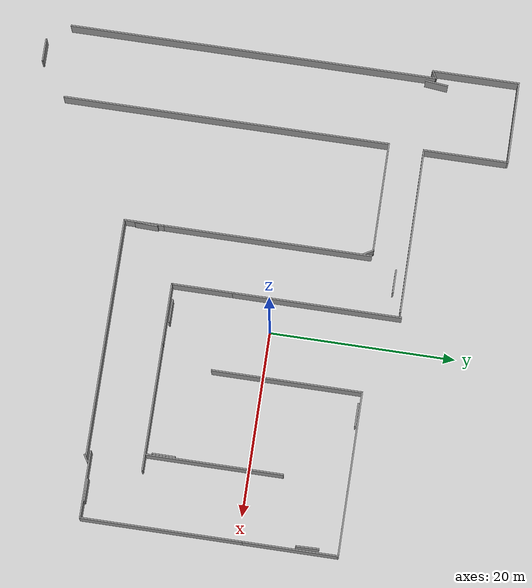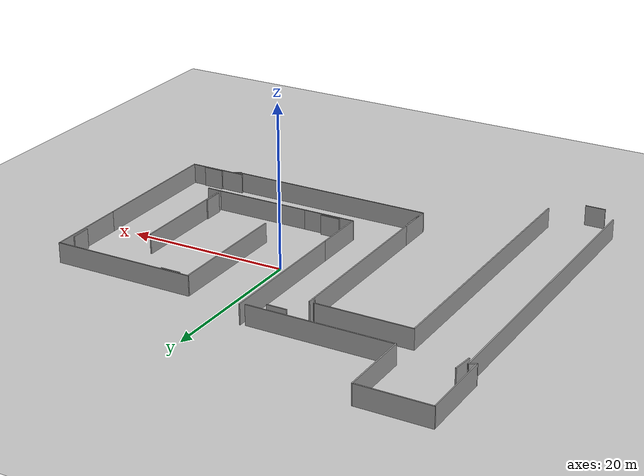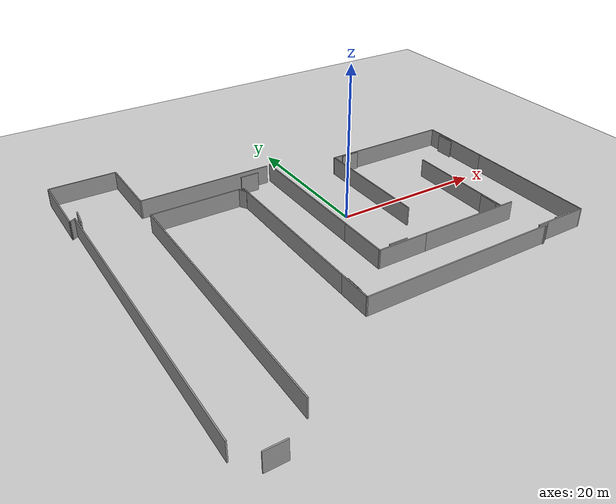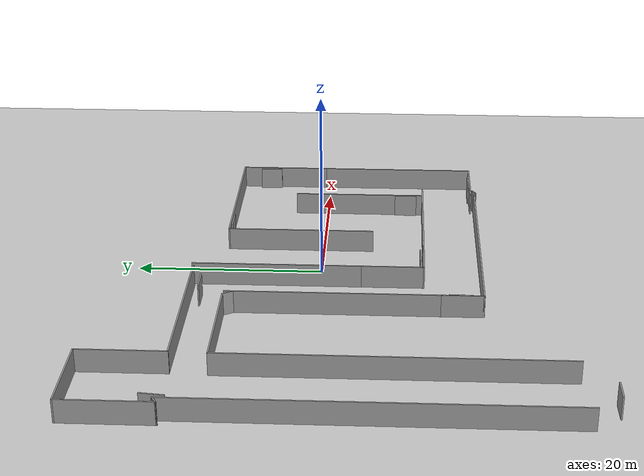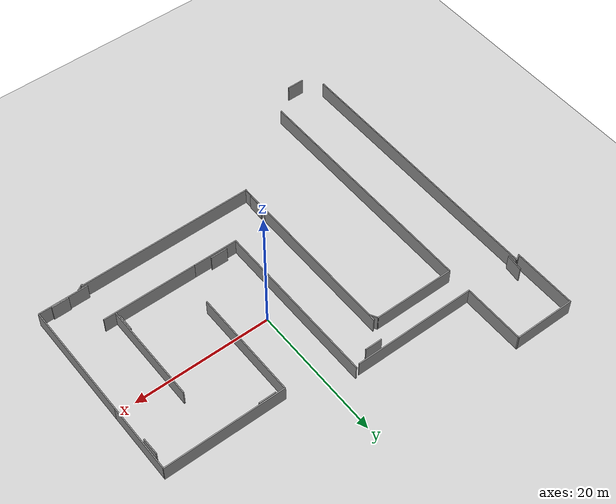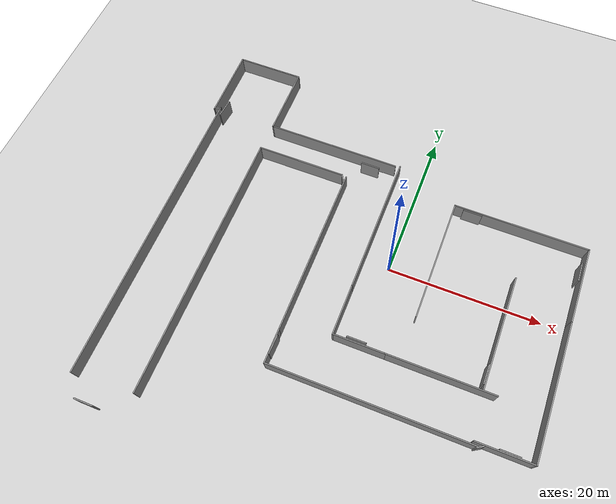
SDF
<sdf version="1.7">
 <world name="default">
  <light name="sun" type="directional">
   <pose>0 0 10 0 -0 0</pose>
   <diffuse>0.8 0.8 0.8 1</diffuse>
   <specular>0.2 0.2 0.2 1</specular>
   <attenuation>
    <range>1000</range>
    <constant>0.9</constant>
    <linear>0.01</linear>
    <quadratic>0.001</quadratic>
   </attenuation>
   <direction>-0.5 0.1 -0.9</direction>
   <spot><inner_angle>0</inner_angle><outer_angle>0</outer_angle><falloff>0</falloff></spot>
  </light>
  <model name="ground_plane">
   <static>1</static>
   <link name="link">
    <collision name="collision">
     <geometry><plane><normal>0 0 1</normal><size>100 100</size></plane></geometry>
     <surface><friction><ode><mu>100</mu><mu2>50</mu2></ode></friction></surface>
    </collision>
    <visual name="visual">
     <cast_shadows>0</cast_shadows>
     <geometry><plane><normal>0 0 1</normal><size>100 100</size></plane></geometry>
     <material>
      <script><uri>file://media/materials/scripts/gazebo.material</uri><name>Gazebo/Grey</name></script>
     </material>
    </visual>
   </link>
  </model>
  <gravity>0 0 -9.8</gravity>
  <magnetic_field>6e-06 2.3e-05 -4.2e-05</magnetic_field>
  <atmosphere type="adiabatic"/>
  <physics type="ode">
   <max_step_size>0.001</max_step_size>
   <real_time_factor>1</real_time_factor>
   <real_time_update_rate>1000</real_time_update_rate>
  </physics>
  <scene><ambient>0.4 0.4 0.4 1</ambient><background>0.7 0.7 0.7 1</background><shadows>1</shadows></scene>
  <audio><device>default</device></audio>
  <spherical_coordinates>
   <surface_model>EARTH_WGS84</surface_model>
   <latitude_deg>0</latitude_deg>
   <longitude_deg>0</longitude_deg>
   <elevation>0</elevation>
   <heading_deg>0</heading_deg>
  </spherical_coordinates>
  <model name="maze">
   <pose>-3.87666 -1.82855 0 0 -0 0</pose>
   <link name="Wall_15">
    <collision name="Wall_15_Collision">
     <geometry><box><size>4.5 0.15 2.5</size></box></geometry>
     <pose>0 0 1.25 0 -0 0</pose>
    </collision>
    <visual name="Wall_15_Visual">
     <pose>0 0 1.25 0 -0 0</pose>
     <geometry><box><size>4.5 0.15 2.5</size></box></geometry>
     <material>
      <script><uri>file://media/materials/scripts/gazebo.material</uri><name>Gazebo/Grey</name></script>
      <ambient>1 1 1 1</ambient>
     </material>
     <meta><layer>0</layer></meta>
    </visual>
    <pose>-5.56984 -13.1727 0 0 -0 -1.5708</pose>
   </link>
   <link name="Wall_16">
    <collision name="Wall_16_Collision">
     <geometry><box><size>26 0.15 2.5</size></box></geometry>
     <pose>0 0 1.25 0 -0 0</pose>
    </collision>
    <visual name="Wall_16_Visual">
     <pose>0 0 1.25 0 -0 0</pose>
     <geometry><box><size>26 0.15 2.5</size></box></geometry>
     <material>
      <script><uri>file://media/materials/scripts/gazebo.material</uri><name>Gazebo/Grey</name></script>
      <ambient>1 1 1 1</ambient>
     </material>
     <meta><layer>0</layer></meta>
    </visual>
    <pose>7.35515 -15.3477 0 0 -0 0</pose>
   </link>
   <link name="Wall_20">
    <collision name="Wall_20_Collision">
     <geometry><box><size>0.976159 0.15 2.5</size></box></geometry>
     <pose>0 0 1.25 0 -0 0</pose>
    </collision>
    <visual name="Wall_20_Visual">
     <pose>0 0 1.25 0 -0 0</pose>
     <geometry><box><size>0.976159 0.15 2.5</size></box></geometry>
     <material>
      <script><uri>file://media/materials/scripts/gazebo.material</uri><name>Gazebo/Grey</name></script>
      <ambient>1 1 1 1</ambient>
     </material>
     <meta><layer>0</layer></meta>
    </visual>
    <pose>20.472 -15.3069 0 0 -0 -2.60229</pose>
   </link>
   <link name="Wall_22">
    <collision name="Wall_22_Collision">
     <geometry><box><size>6.75 0.15 2.5</size></box></geometry>
     <pose>0 0 1.25 0 -0 0</pose>
    </collision>
    <visual name="Wall_22_Visual">
     <pose>0 0 1.25 0 -0 0</pose>
     <geometry><box><size>6.75 0.15 2.5</size></box></geometry>
     <material>
      <script><uri>file://media/materials/scripts/gazebo.material</uri><name>Gazebo/Grey</name></script>
      <ambient>1 1 1 1</ambient>
     </material>
     <meta><layer>0</layer></meta>
    </visual>
    <pose>3.89181 -9.24475 0 0 -0 3.14159</pose>
   </link>
   <link name="Wall_23">
    <collision name="Wall_23_Collision">
     <geometry><box><size>6.75 0.15 2.5</size></box></geometry>
     <pose>0 0 1.25 0 -0 0</pose>
    </collision>
    <visual name="Wall_23_Visual">
     <pose>0 0 1.25 0 -0 0</pose>
     <geometry><box><size>6.75 0.15 2.5</size></box></geometry>
     <material>
      <script><uri>file://media/materials/scripts/gazebo.material</uri><name>Gazebo/Grey</name></script>
      <ambient>1 1 1 1</ambient>
     </material>
     <meta><layer>0</layer></meta>
    </visual>
    <pose>0.59181 -5.94475 0 0 -0 1.5708</pose>
   </link>
   <link name="Wall_25">
    <collision name="Wall_25_Collision">
     <geometry><box><size>18.25 0.15 2.5</size></box></geometry>
     <pose>0 0 1.25 0 -0 0</pose>
    </collision>
    <visual name="Wall_25_Visual">
     <pose>0 0 1.25 0 -0 0</pose>
     <geometry><box><size>18.25 0.15 2.5</size></box></geometry>
     <material>
      <script><uri>file://media/materials/scripts/gazebo.material</uri><name>Gazebo/Grey</name></script>
      <ambient>1 1 1 1</ambient>
     </material>
     <meta><layer>0</layer></meta>
    </visual>
    <pose>0.59181 6.40525 0 0 -0 1.5708</pose>
   </link>
   <link name="Wall_27">
    <collision name="Wall_27_Collision">
     <geometry><box><size>40 0.15 2.5</size></box></geometry>
     <pose>0 0 1.25 0 -0 0</pose>
    </collision>
    <visual name="Wall_27_Visual">
     <pose>0 0 1.25 0 -0 0</pose>
     <geometry><box><size>40 0.15 2.5</size></box></geometry>
     <material>
      <script><uri>file://media/materials/scripts/gazebo.material</uri><name>Gazebo/Grey</name></script>
      <ambient>1 1 1 1</ambient>
     </material>
     <meta><layer>0</layer></meta>
    </visual>
    <pose>-26.0082 -4.46975 0 0 -0 -1.5708</pose>
   </link>
   <link name="Wall_29">
    <collision name="Wall_29_Collision">
     <geometry><box><size>35.5 0.15 2.5</size></box></geometry>
     <pose>0 0 1.25 0 -0 0</pose>
    </collision>
    <visual name="Wall_29_Visual">
     <pose>0 0 1.25 0 -0 0</pose>
     <geometry><box><size>35.5 0.15 2.5</size></box></geometry>
     <material>
      <script><uri>file://media/materials/scripts/gazebo.material</uri><name>Gazebo/Grey</name></script>
      <ambient>1 1 1 1</ambient>
     </material>
     <meta><layer>0</layer></meta>
    </visual>
    <pose>-18.043 -6.20322 0 0 -0 1.5708</pose>
   </link>
   <link name="Wall_30">
    <collision name="Wall_30_Collision">
     <geometry><box><size>12 0.15 2.5</size></box></geometry>
     <pose>0 0 1.25 0 -0 0</pose>
    </collision>
    <visual name="Wall_30_Visual">
     <pose>0 0 1.25 0 -0 0</pose>
     <geometry><box><size>12 0.15 2.5</size></box></geometry>
     <material>
      <script><uri>file://media/materials/scripts/gazebo.material</uri><name>Gazebo/Grey</name></script>
      <ambient>1 1 1 1</ambient>
     </material>
     <meta><layer>0</layer></meta>
    </visual>
    <pose>-12.118 11.4718 0 0 -0 0</pose>
   </link>
   <link name="Wall_32">
    <collision name="Wall_32_Collision">
     <geometry><box><size>22.5 0.15 2.5</size></box></geometry>
     <pose>0 0 1.25 0 -0 0</pose>
    </collision>
    <visual name="Wall_32_Visual">
     <pose>0 0 1.25 0 -0 0</pose>
     <geometry><box><size>22.5 0.15 2.5</size></box></geometry>
     <material>
      <script><uri>file://media/materials/scripts/gazebo.material</uri><name>Gazebo/Grey</name></script>
      <ambient>1 1 1 1</ambient>
     </material>
     <meta><layer>0</layer></meta>
    </visual>
    <pose>-5.56984 0.177332 0 0 -0 1.5708</pose>
   </link>
   <link name="Wall_34">
    <collision name="Wall_34_Collision">
     <geometry><box><size>1.25 0.15 2.5</size></box></geometry>
     <pose>0 0 1.25 0 -0 0</pose>
    </collision>
    <visual name="Wall_34_Visual">
     <pose>0 0 1.25 0 -0 0</pose>
     <geometry><box><size>1.25 0.15 2.5</size></box></geometry>
     <material>
      <script><uri>file://media/materials/scripts/gazebo.material</uri><name>Gazebo/Grey</name></script>
      <ambient>1 1 1 1</ambient>
     </material>
     <meta><layer>0</layer></meta>
    </visual>
    <pose>-5.91799 10.9955 0 0 -0 -1.0472</pose>
   </link>
   <link name="Wall_36">
    <collision name="Wall_36_Collision">
     <geometry><box><size>18 0.15 2.5</size></box></geometry>
     <pose>0 0 1.25 0 -0 0</pose>
    </collision>
    <visual name="Wall_36_Visual">
     <pose>0 0 1.25 0 -0 0</pose>
     <geometry><box><size>18 0.15 2.5</size></box></geometry>
     <material>
      <script><uri>file://media/materials/scripts/gazebo.material</uri><name>Gazebo/Grey</name></script>
      <ambient>1 1 1 1</ambient>
     </material>
     <meta><layer>0</layer></meta>
    </visual>
    <pose>-8.98176 15.2948 0 0 -0 3.14159</pose>
   </link>
   <link name="Wall_37">
    <collision name="Wall_37_Collision">
     <geometry><box><size>9.25 0.15 2.5</size></box></geometry>
     <pose>0 0 1.25 0 -0 0</pose>
    </collision>
    <visual name="Wall_37_Visual">
     <pose>0 0 1.25 0 -0 0</pose>
     <geometry><box><size>9.25 0.15 2.5</size></box></geometry>
     <material>
      <script><uri>file://media/materials/scripts/gazebo.material</uri><name>Gazebo/Grey</name></script>
      <ambient>1 1 1 1</ambient>
     </material>
     <meta><layer>0</layer></meta>
    </visual>
    <pose>-17.9068 19.8448 0 0 -0 1.5708</pose>
   </link>
   <link name="Wall_38">
    <collision name="Wall_38_Collision">
     <geometry><box><size>9 0.15 2.5</size></box></geometry>
     <pose>0 0 1.25 0 -0 0</pose>
    </collision>
    <visual name="Wall_38_Visual">
     <pose>0 0 1.25 0 -0 0</pose>
     <geometry><box><size>9 0.15 2.5</size></box></geometry>
     <material>
      <script><uri>file://media/materials/scripts/gazebo.material</uri><name>Gazebo/Grey</name></script>
      <ambient>1 1 1 1</ambient>
     </material>
     <meta><layer>0</layer></meta>
    </visual>
    <pose>-22.3318 24.3948 0 0 -0 3.14159</pose>
   </link>
   <link name="Wall_39">
    <collision name="Wall_39_Collision">
     <geometry><box><size>9.5 0.15 2.5</size></box></geometry>
     <pose>0 0 1.25 0 -0 0</pose>
    </collision>
    <visual name="Wall_39_Visual">
     <pose>0 0 1.25 0 -0 0</pose>
     <geometry><box><size>9.5 0.15 2.5</size></box></geometry>
     <material>
      <script><uri>file://media/materials/scripts/gazebo.material</uri><name>Gazebo/Grey</name></script>
      <ambient>1 1 1 1</ambient>
     </material>
     <meta><layer>0</layer></meta>
    </visual>
    <pose>-26.7568 19.7198 0 0 -0 -1.5708</pose>
   </link>
   <link name="Wall_40">
    <collision name="Wall_40_Collision">
     <geometry><box><size>1.00374 0.15 2.5</size></box></geometry>
     <pose>0 0 1.25 0 -0 0</pose>
    </collision>
    <visual name="Wall_40_Visual">
     <pose>0 0 1.25 0 -0 0</pose>
     <geometry><box><size>1.00374 0.15 2.5</size></box></geometry>
     <material>
      <script><uri>file://media/materials/scripts/gazebo.material</uri><name>Gazebo/Grey</name></script>
      <ambient>1 1 1 1</ambient>
     </material>
     <meta><layer>0</layer></meta>
    </visual>
    <pose>-26.3825 15.25 0 0 -0 0.501595</pose>
   </link>
   <link name="Wall_43">
    <collision name="Wall_43_Collision">
     <geometry><box><size>7.25 0.15 2.5</size></box></geometry>
     <pose>0 0 1.25 0 -0 0</pose>
    </collision>
    <visual name="Wall_43_Visual">
     <pose>0 0 1.25 0 -0 0</pose>
     <geometry><box><size>7.25 0.15 2.5</size></box></geometry>
     <material>
      <script><uri>file://media/materials/scripts/gazebo.material</uri><name>Gazebo/Grey</name></script>
      <ambient>1 1 1 1</ambient>
     </material>
     <meta><layer>0</layer></meta>
    </visual>
    <pose>23.2336 -14.9455 0 0 -0 0</pose>
   </link>
   <link name="Wall_44">
    <collision name="Wall_44_Collision">
     <geometry><box><size>17.5 0.15 2.5</size></box></geometry>
     <pose>0 0 1.25 0 -0 0</pose>
    </collision>
    <visual name="Wall_44_Visual">
     <pose>0 0 1.25 0 -0 0</pose>
     <geometry><box><size>17.5 0.15 2.5</size></box></geometry>
     <material>
      <script><uri>file://media/materials/scripts/gazebo.material</uri><name>Gazebo/Grey</name></script>
      <ambient>1 1 1 1</ambient>
     </material>
     <meta><layer>0</layer></meta>
    </visual>
    <pose>26.7836 -6.27054 0 0 -0 1.5708</pose>
   </link>
   <link name="Wall_45">
    <collision name="Wall_45_Collision">
     <geometry><box><size>10.25 0.15 2.5</size></box></geometry>
     <pose>0 0 1.25 0 -0 0</pose>
    </collision>
    <visual name="Wall_45_Visual">
     <pose>0 0 1.25 0 -0 0</pose>
     <geometry><box><size>10.25 0.15 2.5</size></box></geometry>
     <material>
      <script><uri>file://media/materials/scripts/gazebo.material</uri><name>Gazebo/Grey</name></script>
      <ambient>1 1 1 1</ambient>
     </material>
     <meta><layer>0</layer></meta>
    </visual>
    <pose>26.7836 7.45446 0 0 -0 1.5708</pose>
   </link>
   <link name="Wall_46">
    <collision name="Wall_46_Collision">
     <geometry><box><size>17.75 0.15 2.5</size></box></geometry>
     <pose>0 0 1.25 0 -0 0</pose>
    </collision>
    <visual name="Wall_46_Visual">
     <pose>0 0 1.25 0 -0 0</pose>
     <geometry><box><size>17.75 0.15 2.5</size></box></geometry>
     <material>
      <script><uri>file://media/materials/scripts/gazebo.material</uri><name>Gazebo/Grey</name></script>
      <ambient>1 1 1 1</ambient>
     </material>
     <meta><layer>0</layer></meta>
    </visual>
    <pose>17.9836 12.5045 0 0 -0 3.14159</pose>
   </link>
   <link name="Wall_47">
    <collision name="Wall_47_Collision">
     <geometry><box><size>16.25 0.15 2.5</size></box></geometry>
     <pose>0 0 1.25 0 -0 0</pose>
    </collision>
    <visual name="Wall_47_Visual">
     <pose>0 0 1.25 0 -0 0</pose>
     <geometry><box><size>16.25 0.15 2.5</size></box></geometry>
     <material>
      <script><uri>file://media/materials/scripts/gazebo.material</uri><name>Gazebo/Grey</name></script>
      <ambient>1 1 1 1</ambient>
     </material>
     <meta><layer>0</layer></meta>
    </visual>
    <pose>9.18358 4.45446 0 0 -0 -1.5708</pose>
   </link>
   <link name="Wall_49">
    <collision name="Wall_49_Collision">
     <geometry><box><size>14.75 0.15 2.5</size></box></geometry>
     <pose>0 0 1.25 0 -0 0</pose>
    </collision>
    <visual name="Wall_49_Visual">
     <pose>0 0 1.25 0 -0 0</pose>
     <geometry><box><size>14.75 0.15 2.5</size></box></geometry>
     <material>
      <script><uri>file://media/materials/scripts/gazebo.material</uri><name>Gazebo/Grey</name></script>
      <ambient>1 1 1 1</ambient>
     </material>
     <meta><layer>0</layer></meta>
    </visual>
    <pose>19.1189 -1.81087 0 0 -0 1.5708</pose>
   </link>
   <link name="Wall_6">
    <collision name="Wall_6_Collision">
     <geometry><box><size>13.7846 0.15 2.5</size></box></geometry>
     <pose>0 0 1.25 0 -0 0</pose>
    </collision>
    <visual name="Wall_6_Visual">
     <pose>0 0 1.25 0 -0 0</pose>
     <geometry><box><size>13.7846 0.15 2.5</size></box></geometry>
     <material>
      <script><uri>file://media/materials/scripts/gazebo.material</uri><name>Gazebo/Grey</name></script>
      <ambient>1 1 1 1</ambient>
     </material>
     <meta><layer>0</layer></meta>
    </visual>
    <pose>14.0091 -9.24475 0 0 -0 3.14159</pose>
   </link>
   <static>1</static>
  </model>
  <model name="board">
   <pose>-0.385 -9.61102 0 0 -0 0</pose>
   <link name="Wall_0">
    <collision name="Wall_0_Collision">
     <geometry><box><size>2.5 0.15 2.5</size></box></geometry>
     <pose>0 0 1.25 0 -0 0</pose>
    </collision>
    <visual name="Wall_0_Visual">
     <pose>0 0 1.25 0 -0 0</pose>
     <geometry><box><size>2.5 0.15 2.5</size></box></geometry>
     <material>
      <script><uri>file://media/materials/scripts/gazebo.material</uri><name>Gazebo/Grey</name></script>
      <ambient>1 1 1 1</ambient>
     </material>
     <meta><layer>0</layer></meta>
    </visual>
    <pose>0 -1.1225 0 0 -0 3.14159</pose>
   </link>
   <static>1</static>
  </model>
  <model name="board_clone">
   <pose>13.9577 -9.08794 -0 0 -0 1.56415</pose>
   <link name="Wall_0">
    <collision name="Wall_0_Collision">
     <geometry><box><size>2.5 0.15 2.5</size></box></geometry>
     <pose>0 0 1.25 0 -0 0</pose>
    </collision>
    <visual name="Wall_0_Visual">
     <pose>0 0 1.25 0 -0 0</pose>
     <geometry><box><size>2.5 0.15 2.5</size></box></geometry>
     <material>
      <script><uri>file://media/materials/scripts/gazebo.material</uri><name>Gazebo/Grey</name></script>
      <ambient>1 1 1 1</ambient>
     </material>
     <meta><layer>0</layer></meta>
    </visual>
    <pose>0 -1.1225 0 0 -0 3.14159</pose>
   </link>
   <static>1</static>
  </model>
  <model name="board_clone_0">
   <pose>7.75979 11.5802 0 0 -0 0</pose>
   <link name="Wall_0">
    <collision name="Wall_0_Collision">
     <geometry><box><size>2.5 0.15 2.5</size></box></geometry>
     <pose>0 0 1.25 0 -0 0</pose>
    </collision>
    <visual name="Wall_0_Visual">
     <pose>0 0 1.25 0 -0 0</pose>
     <geometry><box><size>2.5 0.15 2.5</size></box></geometry>
     <material>
      <script><uri>file://media/materials/scripts/gazebo.material</uri><name>Gazebo/Grey</name></script>
      <ambient>1 1 1 1</ambient>
     </material>
     <meta><layer>0</layer></meta>
    </visual>
    <pose>0 -1.1225 0 0 -0 3.14159</pose>
   </link>
   <static>1</static>
  </model>
  <model name="board_clone_1">
   <pose>23.619 7.37005 0 0 0 -1.54628</pose>
   <link name="Wall_0">
    <collision name="Wall_0_Collision">
     <geometry><box><size>2.5 0.15 2.5</size></box></geometry>
     <pose>0 0 1.25 0 -0 0</pose>
    </collision>
    <visual name="Wall_0_Visual">
     <pose>0 0 1.25 0 -0 0</pose>
     <geometry><box><size>2.5 0.15 2.5</size></box></geometry>
     <material>
      <script><uri>file://media/materials/scripts/gazebo.material</uri><name>Gazebo/Grey</name></script>
      <ambient>1 1 1 1</ambient>
     </material>
     <meta><layer>0</layer></meta>
    </visual>
    <pose>0 -1.1225 0 0 -0 3.14159</pose>
   </link>
   <static>1</static>
  </model>
  <model name="board_clone_2">
   <pose>19.8857 -15.4974 0 0 -0 0</pose>
   <link name="Wall_0">
    <collision name="Wall_0_Collision">
     <geometry><box><size>2.5 0.15 2.5</size></box></geometry>
     <pose>0 0 1.25 0 -0 0</pose>
    </collision>
    <visual name="Wall_0_Visual">
     <pose>0 0 1.25 0 -0 0</pose>
     <geometry><box><size>2.5 0.15 2.5</size></box></geometry>
     <material>
      <script><uri>file://media/materials/scripts/gazebo.material</uri><name>Gazebo/Grey</name></script>
      <ambient>1 1 1 1</ambient>
     </material>
     <meta><layer>0</layer></meta>
    </visual>
    <pose>0 -1.1225 0 0 -0 3.14159</pose>
   </link>
   <static>1</static>
  </model>
  <model name="board_clone_2_clone">
   <pose>-28.2304 13.6664 0 0 0 -1.67919</pose>
   <link name="Wall_0">
    <collision name="Wall_0_Collision">
     <geometry><box><size>2.5 0.15 2.5</size></box></geometry>
     <pose>0 0 1.25 0 -0 0</pose>
    </collision>
    <visual name="Wall_0_Visual">
     <pose>0 0 1.25 0 -0 0</pose>
     <geometry><box><size>2.5 0.15 2.5</size></box></geometry>
     <material>
      <script><uri>file://media/materials/scripts/gazebo.material</uri><name>Gazebo/Grey</name></script>
      <ambient>1 1 1 1</ambient>
     </material>
     <meta><layer>0</layer></meta>
    </visual>
    <pose>0 -1.1225 0 0 -0 3.14159</pose>
   </link>
   <static>1</static>
  </model>
  <model name="board_clone_2_clone_0">
   <pose>-26.7567 -27.5776 0 0 -0 0</pose>
   <link name="Wall_0">
    <collision name="Wall_0_Collision">
     <geometry><box><size>2.5 0.15 2.5</size></box></geometry>
     <pose>0 0 1.25 0 -0 0</pose>
    </collision>
    <visual name="Wall_0_Visual">
     <pose>0 0 1.25 0 -0 0</pose>
     <geometry><box><size>2.5 0.15 2.5</size></box></geometry>
     <material>
      <script><uri>file://media/materials/scripts/gazebo.material</uri><name>Gazebo/Grey</name></script>
      <ambient>1 1 1 1</ambient>
     </material>
     <meta><layer>0</layer></meta>
    </visual>
    <pose>0 -1.1225 0 0 -0 3.14159</pose>
   </link>
   <static>1</static>
  </model>
  <model name="board_clone_2_clone_1">
   <pose>-7.08226 13.4907 0 0 -0 0</pose>
   <link name="Wall_0">
    <collision name="Wall_0_Collision">
     <geometry><box><size>2.5 0.15 2.5</size></box></geometry>
     <pose>0 0 1.25 0 -0 0</pose>
    </collision>
    <visual name="Wall_0_Visual">
     <pose>0 0 1.25 0 -0 0</pose>
     <geometry><box><size>2.5 0.15 2.5</size></box></geometry>
     <material>
      <script><uri>file://media/materials/scripts/gazebo.material</uri><name>Gazebo/Grey</name></script>
      <ambient>1 1 1 1</ambient>
     </material>
     <meta><layer>0</layer></meta>
    </visual>
    <pose>0 -1.1225 0 0 -0 3.14159</pose>
   </link>
   <static>1</static>
  </model>
  <model name="board_clone_2_clone_2">
   <pose>-10.4724 -14.7619 0 0 -0 1.54782</pose>
   <link name="Wall_0">
    <collision name="Wall_0_Collision">
     <geometry><box><size>2.5 0.15 2.5</size></box></geometry>
     <pose>0 0 1.25 0 -0 0</pose>
    </collision>
    <visual name="Wall_0_Visual">
     <pose>0 0 1.25 0 -0 0</pose>
     <geometry><box><size>2.5 0.15 2.5</size></box></geometry>
     <material>
      <script><uri>file://media/materials/scripts/gazebo.material</uri><name>Gazebo/Grey</name></script>
      <ambient>1 1 1 1</ambient>
     </material>
     <meta><layer>0</layer></meta>
    </visual>
    <pose>0 -1.1225 0 0 -0 3.14159</pose>
   </link>
   <static>1</static>
  </model>
 </world>
</sdf>
